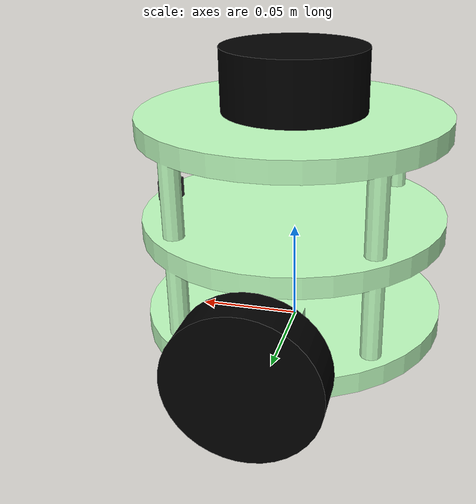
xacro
<?xml version="1.0" ?>
<robot
  name="slam_robot" xmlns:xacro="http://ros.org/wiki/xacro">

  <xacro:macro name="body_color">
      <visual>
      <material>
          <ambient>0.752941176470588 1 0.752941176470588 1</ambient>
          <diffuse>0.752941176470588 1 0.752941176470588 1</diffuse>
          <specular>0.1 0.1 0.1 1</specular>
          <emissive>0 0 0 0</emissive>
      </material>
      </visual>
  </xacro:macro>

  <xacro:macro name="wheel_color">
      <visual>
      <material>
          <ambient>0 0 0 1</ambient>
          <diffuse>0 0 0 1</diffuse>
          <specular>0.1 0.1 0.1 1</specular>
          <emissive>0 0 0 0</emissive>
      </material>
      </visual>
  </xacro:macro>

  <xacro:macro name="camera_color">
      <visual>
      <material>
          <ambient>0.250980392156863 0.250980392156863 0.250980392156863 1</ambient>
          <diffuse>0.250980392156863 0.250980392156863 0.250980392156863 1</diffuse>
          <specular>0.1 0.1 0.1 1</specular>
          <emissive>0 0 0 0</emissive>
      </material>
      </visual>
  </xacro:macro>

  <link
    name="base_link">
    <inertial>
      <origin
        xyz="-2.19065333582868E-11 -7.91162099286828E-10 0.0517718491798418"
        rpy="0 0 0" />
      <mass
        value="0.602560315596927" />
      <inertia
        ixx="0.0019183316981398"
        ixy="1.12593516866759E-11"
        ixz="-3.16471895451672E-13"
        iyy="0.00182425493094387"
        iyz="-1.18443100071739E-11"
        izz="0.00176728421405667" />
    </inertial>
    <visual>
      <origin
        xyz="0 0 0"
        rpy="0 0 0" />
      <geometry>
        <mesh
          filename="package://slam_robot/meshes/base_link.STL" />
      </geometry>
      <material
        name="">
        <color
          rgba="0.752941176470588 1 0.752941176470588 1" />
      </material>
    </visual>
    <collision>
      <origin
        xyz="0 0 0"
        rpy="0 0 0" />
      <geometry>
        <mesh
          filename="package://slam_robot/meshes/base_link.STL" />
      </geometry>
    </collision>
  </link>
  <link
    name="lidar_link">
    <inertial>
      <origin
        xyz="2.79823572234202E-17 2.79823572234205E-17 0.015"
        rpy="0 0 0" />
      <mass
        value="0.115453530019425" />
      <inertia
        ixx="4.40166583199058E-05"
        ixy="6.7762635780344E-21"
        ixz="6.59149132545472E-20"
        iyy="4.40166583199058E-05"
        iyz="6.59149132545479E-20"
        izz="7.07152871368978E-05" />
    </inertial>
    <visual>
      <origin
        xyz="0 0 0"
        rpy="0 0 0" />
      <geometry>
        <mesh
          filename="package://slam_robot/meshes/lidar_link.STL" />
      </geometry>
      <material
        name="">
        <color
          rgba="0 0 0 1" />
      </material>
    </visual>
    <collision>
      <origin
        xyz="0 0 0"
        rpy="0 0 0" />
      <geometry>
        <mesh
          filename="package://slam_robot/meshes/lidar_link.STL" />
      </geometry>
    </collision>
  </link>
  <joint
    name="lidar_joint"
    type="fixed">
    <origin
      xyz="0 0 0.11"
      rpy="0 0 0" />
    <parent
      link="base_link" />
    <child
      link="lidar_link" />
    <axis
      xyz="0 0 0" />
  </joint>
  <link
    name="camera_link">
    <inertial>
      <origin
        xyz="-0.00500000000000002 0 -1.38777878078145E-17"
        rpy="0 0 0" />
      <mass
        value="0.001" />
      <inertia
        ixx="1.66666666666667E-08"
        ixy="-1.65436122510606E-24"
        ixz="-1.14436069195601E-24"
        iyy="1.66666666666667E-08"
        iyz="-3.74106218370646E-25"
        izz="1.66666666666667E-08" />
    </inertial>
    <visual>
      <origin
        xyz="0 0 0"
        rpy="0 0 0" />
      <geometry>
        <mesh
          filename="package://slam_robot/meshes/camera_link.STL" />
      </geometry>
      <material
        name="">
        <color
          rgba="0.250980392156863 0.250980392156863 0.250980392156863 1" />
      </material>
    </visual>
    <collision>
      <origin
        xyz="0 0 0"
        rpy="0 0 0" />
      <geometry>
        <mesh
          filename="package://slam_robot/meshes/camera_link.STL" />
      </geometry>
    </collision>
  </link>
  <joint
    name="camera_joint"
    type="fixed">
    <origin
      xyz="0.0700000000000002 0 0.0649999999999998"
      rpy="0 0 0" />
    <parent
      link="base_link" />
    <child
      link="camera_link" />
    <axis
      xyz="0 0 0" />
  </joint>
  <link
    name="right_wheel_link">
    <inertial>
      <origin
        xyz="-6.24500451351651E-17 0.0099904214559387 -2.42861286636753E-17"
        rpy="0 0 0" />
      <mass
        value="0.0768708452425253" />
      <inertia
        ixx="2.61315090669255E-05"
        ixy="-1.16043513773839E-19"
        ixz="-2.3609709236418E-21"
        iyy="4.71432179617743E-05"
        iyz="-6.48093914451185E-20"
        izz="2.61315090669255E-05" />
    </inertial>
    <visual>
      <origin
        xyz="0 0 0"
        rpy="0 0 0" />
      <geometry>
        <mesh
          filename="package://slam_robot/meshes/right_wheel_link.STL" />
      </geometry>
      <material
        name="">
        <color
          rgba="0 0 0 1" />
      </material>
    </visual>
    <collision>
      <origin
        xyz="0 0 0"
        rpy="0 0 0" />
      <geometry>
        <mesh
          filename="package://slam_robot/meshes/right_wheel_link.STL" />
      </geometry>
    </collision>
  </link>
  <joint
    name="right_wheel_joint"
    type="continuous">
    <origin
      xyz="0 -0.1 0.0200000000000002"
      rpy="0 0 0" />
    <parent
      link="base_link" />
    <child
      link="right_wheel_link" />
    <axis
      xyz="0 -1 0" />
  </joint>
  <link
    name="left_wheel_link">
    <inertial>
      <origin
        xyz="-6.80011602582908E-16 0.190009578544061 -4.16333634234434E-17"
        rpy="0 0 0" />
      <mass
        value="0.0768708452425252" />
      <inertia
        ixx="2.61315090669254E-05"
        ixy="-7.6232965252887E-21"
        ixz="1.49610355232439E-22"
        iyy="4.71432179617743E-05"
        iyz="3.17533111941013E-20"
        izz="2.61315090669255E-05" />
    </inertial>
    <visual>
      <origin
        xyz="0 0 0"
        rpy="0 0 0" />
      <geometry>
        <mesh
          filename="package://slam_robot/meshes/left_wheel_link.STL" />
      </geometry>
      <material
        name="">
        <color
          rgba="0 0 0 1" />
      </material>
    </visual>
    <collision>
      <origin
        xyz="0 0 0"
        rpy="0 0 0" />
      <geometry>
        <mesh
          filename="package://slam_robot/meshes/left_wheel_link.STL" />
      </geometry>
    </collision>
  </link>
  <joint
    name="left_wheel_joint"
    type="continuous">
    <origin
      xyz="0 -0.1 0.0200000000000002"
      rpy="0 0 0" />
    <parent
      link="base_link" />
    <child
      link="left_wheel_link" />
    <axis
      xyz="0 1 0" />
  </joint>

  <gazebo reference="base_link">
    <xacro:body_color />
  </gazebo>
  <gazebo reference="lidar_link">
      <xacro:wheel_color />
  </gazebo>
  <gazebo reference="right_wheel_link">
      <xacro:wheel_color />
  </gazebo>
  <gazebo reference="left_wheel_link">
      <xacro:wheel_color />
  </gazebo>
  <gazebo reference="camera_link">
      <xacro:camera_color />
  </gazebo>

    <gazebo reference="lidar_link">
  <sensor name="lidar" type="ray">

    <always_on>true</always_on>
    <visualize>true</visualize>
    <update_rate>5</update_rate>
    <ray>
      <scan>
        <horizontal>
          <samples>360</samples>
          <resolution>1.00000</resolution>
          <min_angle>0.000000</min_angle>
          <max_angle>6.280000</max_angle>
        </horizontal>
      </scan>
      <range>
        <min>0.120000</min>
        <max>3.5</max>
        <resolution>0.015000</resolution>
      </range>
      <noise>
        <type>gaussian</type>
        <mean>0.0</mean>
        <stddev>0.01</stddev>
      </noise>
    </ray>
    <plugin name="scan_2" filename="libgazebo_ros_ray_sensor.so">
      <ros>
        <remapping>~/out:=scan</remapping>
      </ros>
      <output_type>sensor_msgs/LaserScan</output_type>
      <frame_name>lidar_link</frame_name>
    </plugin>
  </sensor>
  </gazebo>

  <!-- Adding Controllers -->
  <ros2_control name="GazeboSystem" type="system">
  <hardware>
    <plugin>gazebo_ros2_control/GazeboSystem</plugin>
  </hardware>
  <joint name="right_wheel_joint">
    <command_interface name="velocity">
        <param name="min">-1000.0</param>
        <param name="max">1000.0</param>
    </command_interface>
    <state_interface name="position"/>
    <state_interface name="velocity"/>
  </joint>
  <joint name="left_wheel_joint">
    <command_interface name="velocity">
        <param name="min">-1000.0</param>
        <param name="max">1000.0</param>
    </command_interface>
    <state_interface name="position"/>
    <state_interface name="velocity"/>
  </joint>

  </ros2_control>

  <gazebo>
      <plugin filename="libgazebo_ros2_control.so" name="gazebo_ros2_control">
        <parameters>$(find slam_robot)/config/control.yaml</parameters>
      </plugin>
  </gazebo>

  <gazebo reference="camera_link">
    <sensor type="camera" name="camera_sensor">
      <visualize>true</visualize>
      <update_rate>30.0</update_rate>
      <camera name="camera">
        <horizontal_fov>1.3962634</horizontal_fov>
        <image>
          <width>800</width>
          <height>800</height>
          <format>R8G8B8</format>
        </image>
        <clip>
          <near>0.02</near>
          <far>300</far>
        </clip>
        <noise>
          <type>gaussian</type>
          <mean>0.0</mean>
          <stddev>0.007</stddev>
        </noise>
      </camera>
      <plugin name="camera_controller" filename="libgazebo_ros_camera.so">
        <alwaysOn>true</alwaysOn>
        <updateRate>0.0</updateRate>
        <cameraName>/prius/front_camera</cameraName>
        <imageTopicName>image_raw</imageTopicName>
        <cameraInfoTopicName>/camera/camera_info</cameraInfoTopicName>
        <frameName>camera_link</frameName>

      </plugin>
    </sensor>
  </gazebo>
</robot>
